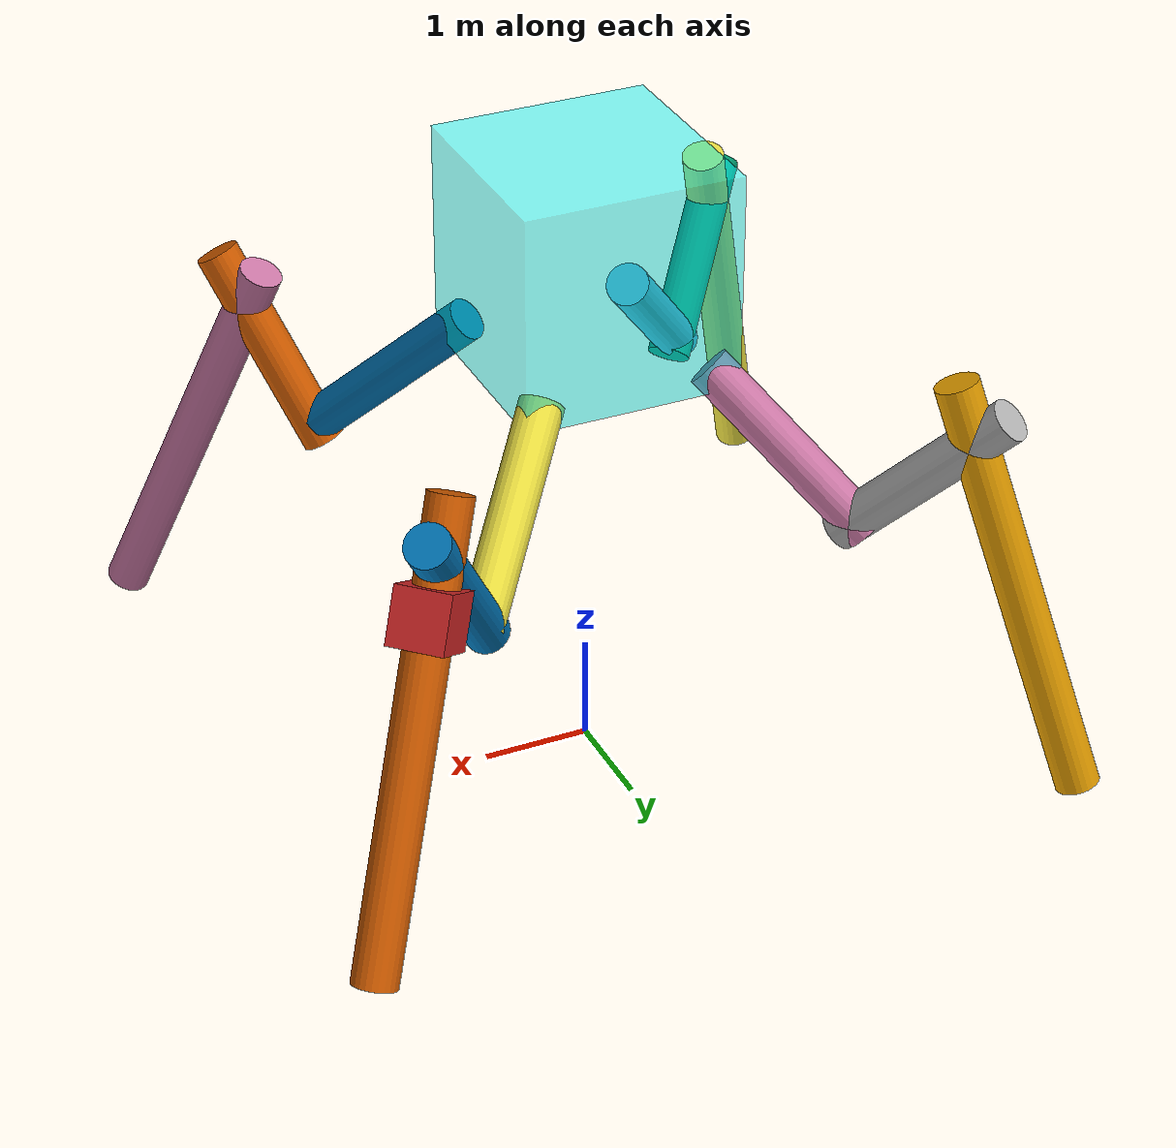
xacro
<?xml version="1.0" encoding="utf-8"?>
<robot xmlns:xacro="http://www.ros.org/wiki/xacro" name="spider_robot">

	<gazebo>
	  <plugin name="gazebo_ros_control" filename="libgazebo_ros_control.so">
		<robotNamespace>/spider_robot</robotNamespace>
	  </plugin>

	</gazebo>

	<gazebo reference="camera_link">
		<sensor type="camera" name="camera1">
			<update_rate>30.0</update_rate>
			<camera name="head">
				<horizontal_fov>1.3962634</horizontal_fov>
				<image>
					<width>800</width>
					<height>800</height>
					<format>R8G8B8</format>
				</image>
				<clip>
					<near>0.02</near>
					<far>300</far>
				</clip>

			</camera>

			<plugin name="camera_controller" filename="libgazebo_ros_camera.so">
				<alwaysOn>true</alwaysOn>
				<updateRate>0.0</updateRate>
				<cameraName>spider_robot/camera1</cameraName>
				<imageTopicName>image_raw</imageTopicName>
				<cameraInfoTopicName>camera_info</cameraInfoTopicName>
				<frameName>camera_link</frameName>
				<hackBaseline>0.07</hackBaseline>
				<distortionK1>0.0</distortionK1>
				<distortionK2>0.0</distortionK2>
				<distortionK3>0.0</distortionK3>
				<distortionT1>0.0</distortionT1>
				<distortionT2>0.0</distortionT2>
			</plugin>
		</sensor>

	</gazebo>

	<xacro:macro name="transm" params="t_name joint m_name">
		<transmission name="${t_name}">
		  <type>transmission_interface/SimpleTransmission</type>
		  <joint name="${joint}">
			<hardwareInterface>EffortJointInterface</hardwareInterface>
		  </joint>
		  <actuator name="${m_name}">
			<mechanicalReduction>1</mechanicalReduction>
			<hardwareInterface>EffortJointInterface</hardwareInterface>
		  </actuator>
		</transmission>
	</xacro:macro>

    <link name ="world"/>

    <link name="base_link">
		<visual>
		    <origin xyz="0 0 5"/>

			<geometry>
				<box size="2 2 2"/>
			</geometry>
			<material name="Cyan">
				<color rgba="0 1 1 0.5"/>
			</material>
		</visual>
		<inertial>
      		<mass value="10"/>
      		<inertia ixx="0.4" ixy="0.0" ixz="0.0" iyy="0.4" iyz="0.0" izz="0.2"/>
    	</inertial>

	</link>

    <joint name="world_to_base" type="fixed">
		<parent link = "world"/>
		<child link = "base_link"/>
	</joint>

	<xacro:macro name="link_cylinder_collision" params="name radius length">
		<link name="${name}">
		<visual>

			<geometry>
				<cylinder radius="${radius}" length="${length}"/>
			</geometry>

		</visual>
		<inertial>
      		<mass value="10"/>
      		<inertia ixx="0.4" ixy="0.0" ixz="0.0" iyy="0.4" iyz="0.0" izz="0.2"/>
    	</inertial>
		</link>
	</xacro:macro>

	<xacro:macro name="link_cylinder" params="name radius length">
		<link name="${name}">
		<visual>

			<geometry>
				<cylinder radius="${radius}" length="${length}"/>
			</geometry>

		</visual>
		<inertial>
      		<mass value="10"/>
      		<inertia ixx="0.4" ixy="0.0" ixz="0.0" iyy="0.4" iyz="0.0" izz="0.2"/>
    	</inertial>

		</link>
	</xacro:macro>

	<xacro:macro name="revolute_joint" params="name parent child coords angles axis lower upper">
        <joint name="${name}" type="revolute">
            <limit effort="100"  velocity="3" lower="${lower}" upper="${upper}"/>
			<axis xyz="${axis}"/>
			<parent link="${parent}"/>
            <child link="${child}"/>
            <origin xyz="${coords}" rpy="${angles}"/>
        </joint>
    </xacro:macro>

	<xacro:macro name="fixed_joint" params="name parent child coords angles">
        <joint name="${name}" type="fixed">
			<parent link="${parent}"/>
            <child link="${child}"/>
            <origin xyz="${coords}" rpy="${angles}"/>
        </joint>
    </xacro:macro>

	<xacro:property name="leg_radius" value="0.2"/>

	<transm t_name="tran11"  joint="leg1_leg11" m_name="motor11"/>
	<transm t_name="tran22"  joint="leg2_leg22" m_name="motor22"/>
	<transm t_name="tran33"  joint="leg3_leg33" m_name="motor33"/>
	<transm t_name="tran44"  joint="leg4_leg44" m_name="motor44"/>

	<transm t_name="tran111"  joint="leg11_leg111" m_name="motor111"/>
	<transm t_name="tran222"  joint="leg22_leg222" m_name="motor222"/>
	<transm t_name="tran333"  joint="leg33_leg333" m_name="motor333"/>
	<transm t_name="tran444"  joint="leg44_leg444" m_name="motor444"/>

	<transm t_name="tran_camera"  joint="camera_joint" m_name="motor_camera"/>

	<revolute_joint name="camera_joint" parent="leg111" child="camera_link"
				 coords="0.05 0 1" angles="0 0 0" axis="0 1 0" lower="-1" upper="1"/>

	<link name="camera_link">
		<visual>
			<origin xyz="0 0 0" rpy="0 0 0"/>
			<geometry>
				<box size="0.5 0.5 0.5"/>
			</geometry>
			<material name="red"/>
		</visual>

		<inertial>
			<mass value="1e-5"/>
			<origin xyz="0 0 0" rpy="0 0 0"/>
			<inertia ixx="1e-6" ixy="0" ixz="0" iyy="1e-6" iyz="0" izz="1e-6"/>
		</inertial>

	</link>

	<link_cylinder name="leg1"  radius="${leg_radius}" length="2"/>
	<fixed_joint name="base_leg1" parent="base_link" child="leg1"
				 coords="1.3 1.35 3.5" angles="0 2.3 0.8"/>
	<link_cylinder name="leg11" radius = "${leg_radius}" length="2"/>
	<revolute_joint name="leg1_leg11" parent="leg1" child="leg11"
				 coords="-0.8 0 0.9" angles="0 1.5 0" axis="0 1 0" lower="-1" upper="1"/>
	<link_cylinder_collision name="leg111" radius="${leg_radius}" length="4"/>
	<revolute_joint name="leg11_leg111" parent="leg11" child="leg111"
				 coords="-1.3 0 0" angles="0 2 0" axis="0 1 0" lower="-0.3" upper="0.3"/>

	<link_cylinder name="leg2"  radius="${leg_radius}" length="2"/>
	<fixed_joint name="base_leg2" parent="base_link" child="leg2"
				 coords="-1.3 1.35 3.5" angles="0 -2.3 -0.8"/>
	<link_cylinder name="leg22" radius = "${leg_radius}" length="2"/>
	<revolute_joint name="leg2_leg22" parent="leg2" child="leg22"
				 coords="0.8 0 0.9" angles="0 1.5 0" axis="0 1 0" lower="-1" upper="1"/>
	<link_cylinder_collision name="leg222" radius="${leg_radius}" length="4"/>
	<revolute_joint name="leg22_leg222" parent="leg22" child="leg222"
				 coords="-1.3 0 0" angles="0 -2 0" axis="0 1 0" lower="-0.3" upper="0.3"/>

	<link_cylinder name="leg3"  radius="${leg_radius}" length="2"/>
	<fixed_joint name="base_leg3" parent="base_link" child="leg3"
				 coords="-1.3 -1.35 3.5" angles="0 -2.3 0.8"/>
	<link_cylinder name="leg33" radius = "${leg_radius}" length="2"/>
	<revolute_joint name="leg3_leg33" parent="leg3" child="leg33"
				 coords="0.8 0 0.9" angles="0 1.5 0" axis="0 1 0" lower="-1" upper="1"/>
	<link_cylinder_collision name="leg333" radius="${leg_radius}" length="4"/>
	<revolute_joint name="leg33_leg333" parent="leg33" child="leg333"
				 coords="-1.3 0 0" angles="0 -2 0" axis="0 1 0" lower="-0.3" upper="0.3"/>

	<link_cylinder name="leg4"  radius="${leg_radius}" length="2"/>
	<fixed_joint name="base_leg4" parent="base_link" child="leg4"
				 coords="1.3 -1.35 3.5" angles="0 2.3 -0.8"/>
	<link_cylinder name="leg44" radius = "${leg_radius}" length="2"/>
	<revolute_joint name="leg4_leg44" parent="leg4" child="leg44"
				 coords="-0.8 0 0.9" angles="0 4.5 0" axis="0 1 0" lower="-1" upper="1"/>
	<link_cylinder_collision name="leg444" radius="${leg_radius}" length="4"/>
	<revolute_joint name="leg44_leg444" parent="leg44" child="leg444"
				 coords="1.3 0 -0.5" angles="0 2.2 0" axis="0 1 0" lower="-0.3" upper="0.3"/>

</robot>
